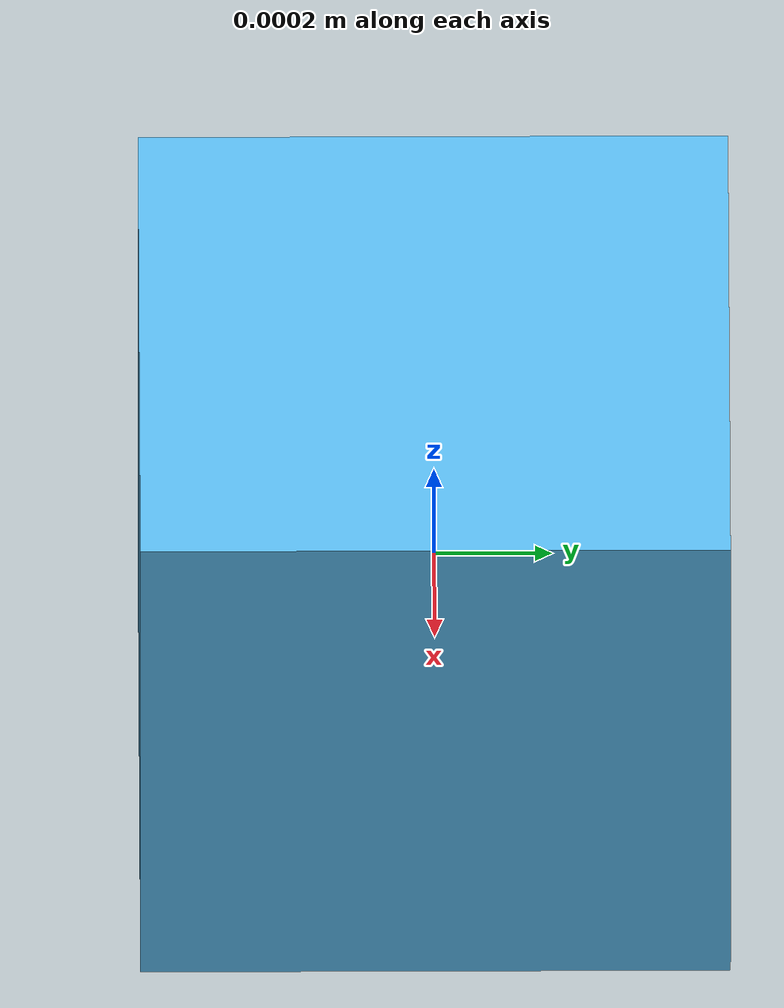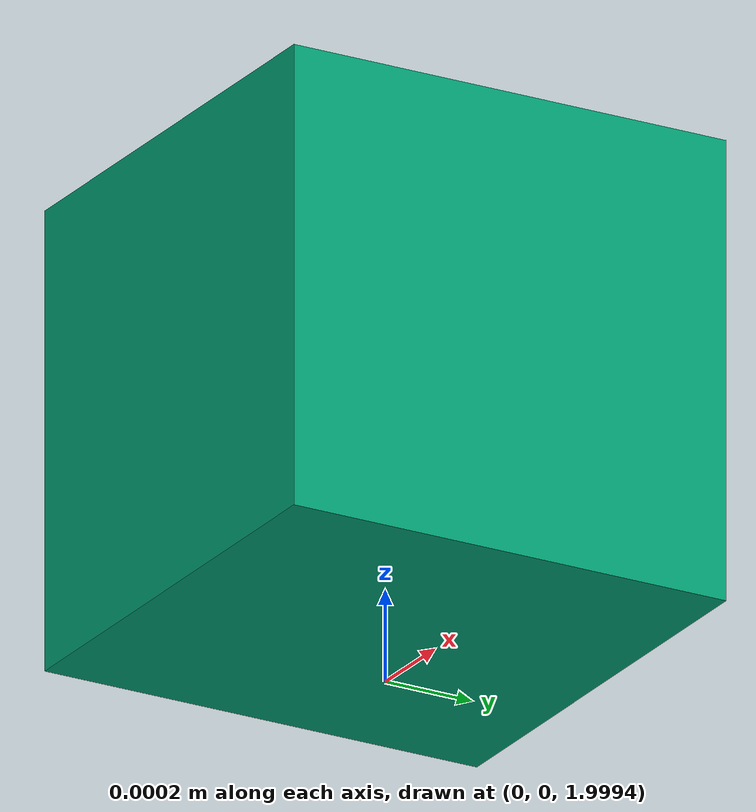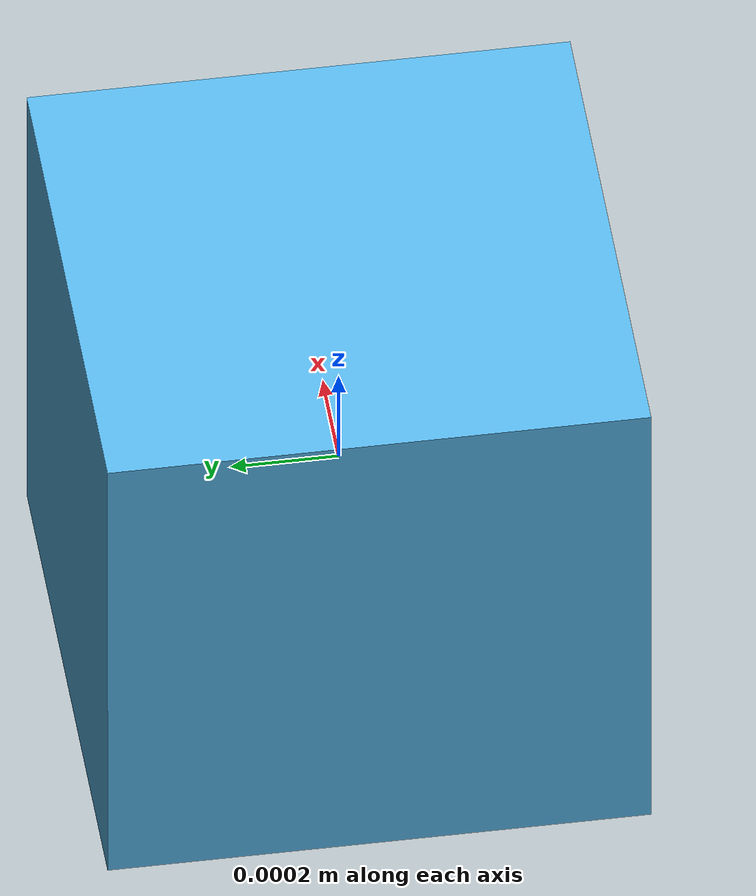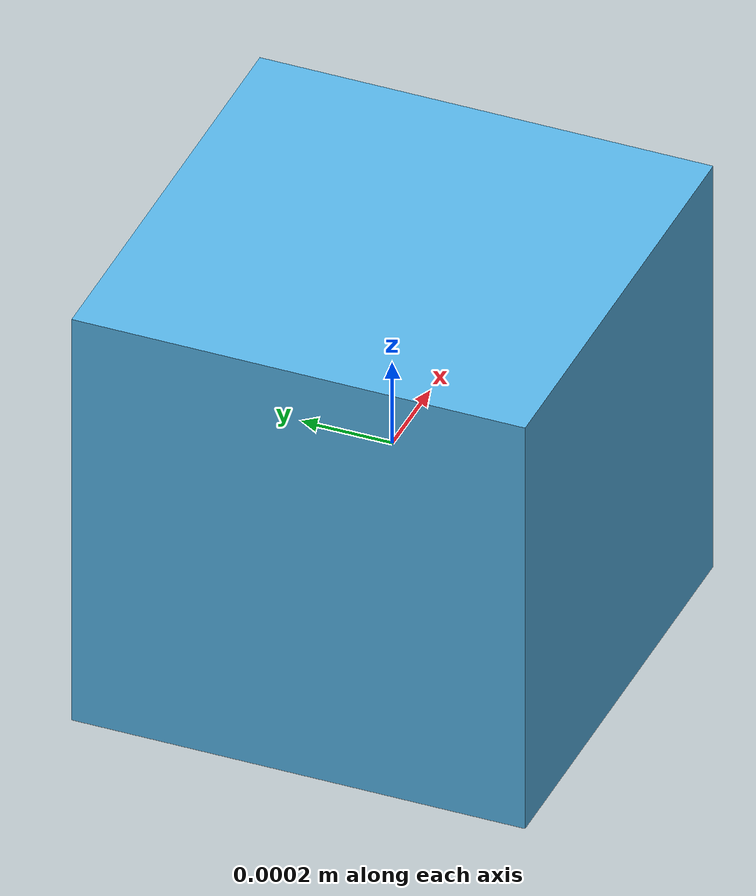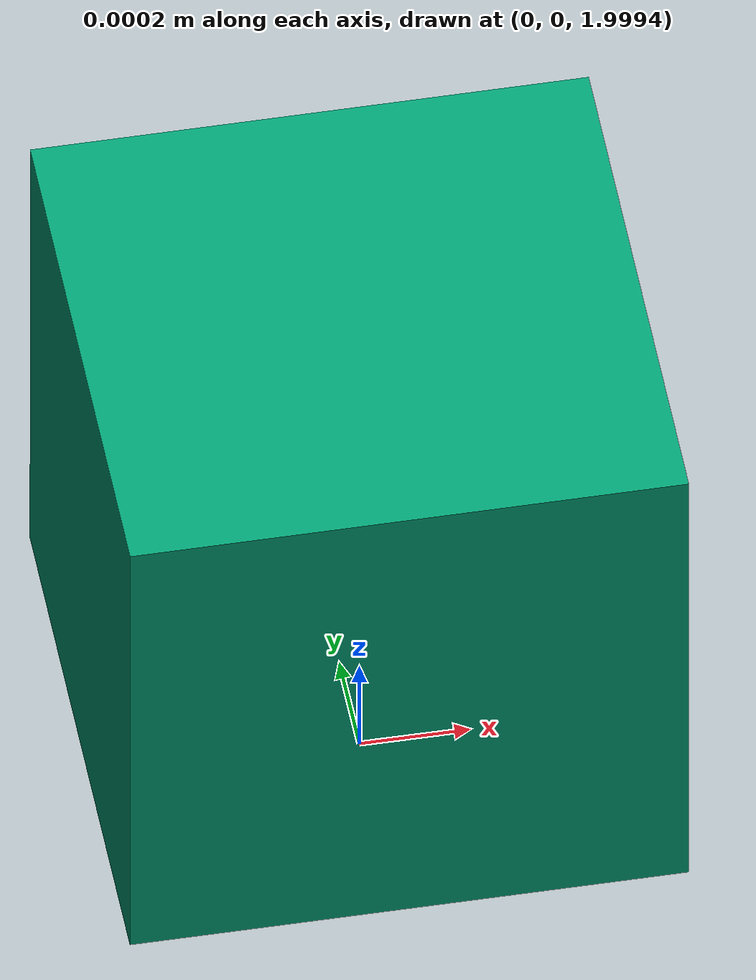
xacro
<?xml version="1.0"?>
<robot name="cam_bot" xmlns:xacro="http://ros.org/wiki/xacro">

<link name="world" />

<joint name="world_base" type="fixed">
    <parent link="world" />
    <child link="camera_base_link"/>
    <origin xyz="0 0.0 0.0" rpy="0.0 0.0 0.0" />
</joint>

<link name="camera_base_link">
<inertial>
        <mass value="1.584994"/>
        <origin xyz="0.0 0.0 0.0"/>
        <inertia
          ixx="0.01042" ixy="0.001177" ixz="-0.0008871"
          iyy="0.01045" iyz="0.0002226"
          izz="0.01817"/>
      </inertial>
    <visual>
        <geometry>
          <box size="0.001 0.001 0.001" />
        </geometry>
      </visual>
      <collision>
        <geometry>
          <box size="0.001 0.001 0.001" />
        </geometry>
      </collision>
</link>

<joint name="camera_to_base" type="fixed">
      <parent link="camera_base_link" />
      <child link = "camera_link" />
      <origin xyz="0.0 0.0 2" rpy="0 3.142 0.0" />
</joint>

<link name="camera_link">
<inertial>
        <mass value="1.584994"/>
        <origin xyz="0.0 0.0 0.0"/>
        <inertia
          ixx="0.01042" ixy="0.001177" ixz="-0.0008871"
          iyy="0.01045" iyz="0.0002226"
          izz="0.01817"/>
      </inertial>
    <visual>
        <geometry>
        <box size="0.001 0.001 0.001" />
        </geometry>
      </visual>
      <collision>
        <geometry>
        <box size="0.001 0.001 0.001" />
        </geometry>
      </collision>
</link>

<gazebo reference="camera_link">
    <sensor type="camera" name="camera">
      <update_rate>30.0</update_rate>
      <camera name="head">
        <horizontal_fov>1.3962634</horizontal_fov>
        <image>
          <width>640</width>
          <height>480</height>
          <format>R8G8B8</format>
        </image>
        <clip>
          <near>0.02</near>
          <far>300</far>
        </clip>
        <noise>
          <type>gaussian</type>
          <!-- Noise is sampled independently per pixel on each frame.
               That pixel's noise value is added to each of its color
               channels, which at that point lie in the range [0,1]. -->
          <mean>0.0</mean>
          <stddev>0.007</stddev>
        </noise>
      </camera>
      <plugin name="camera_controller" filename="libgazebo_ros_camera.so">
        <alwaysOn>true</alwaysOn>
        <updateRate>0.0</updateRate>
        <cameraName>usb_cam</cameraName>
        <imageTopicName>image_raw</imageTopicName>
        <cameraInfoTopicName>/camera/camera_info</cameraInfoTopicName>
        <frameName>camera_link</frameName>
        <hackBaseline>0.07</hackBaseline>
        <distortionK1>0.0</distortionK1>
        <distortionK2>0.0</distortionK2>
        <distortionK3>0.0</distortionK3>
        <distortionT1>0.0</distortionT1>
        <distortionT2>0.0</distortionT2>
      </plugin>
    </sensor>
  </gazebo>

</robot>
